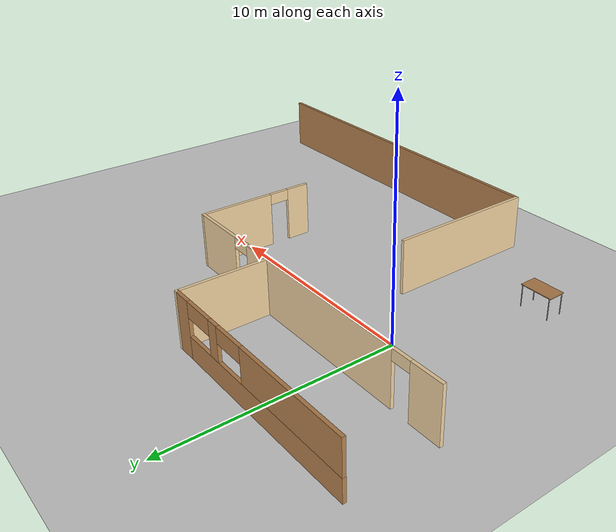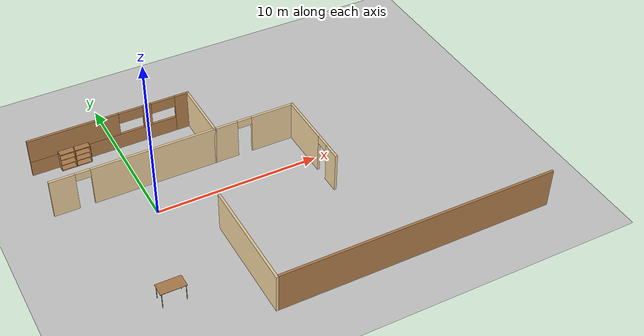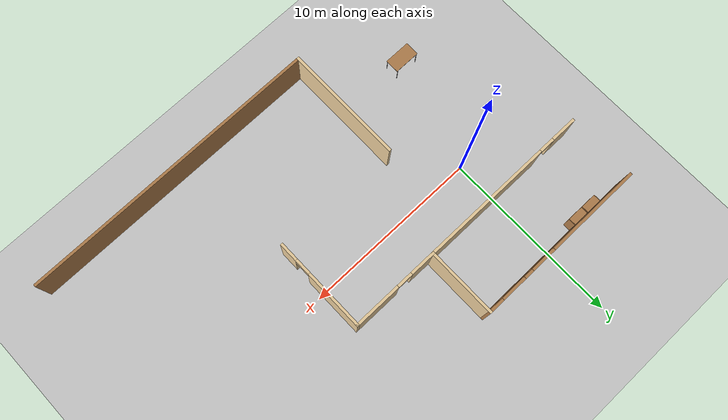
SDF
<sdf version="1.6">
 <world name="default">
  <model name="ground_plane">
   <static>1</static>
   <link name="link">
    <collision name="collision">
     <geometry><plane><normal>0 0 1</normal><size>100 100</size></plane></geometry>
     <surface><friction><ode><mu>100</mu><mu2>50</mu2></ode></friction></surface>
    </collision>
    <visual name="visual">
     <cast_shadows>0</cast_shadows>
     <geometry><plane><normal>0 0 1</normal><size>100 100</size></plane></geometry>
     <material>
      <script><uri>file://media/materials/scripts/gazebo.material</uri><name>Gazebo/Grey</name></script>
     </material>
    </visual>
   </link>
  </model>
  <model name="mymodel_2">
   <link name="Wall_119">
    <pose>21.35 1.375 0 0 0 -1.5708</pose>
    <visual name="Wall_119_Visual_0">
     <pose>-0.987502 0 1.25 0 -0 0</pose>
     <geometry><box><size>3.425 0.15 2.5</size></box></geometry>
     <material>
      <script><uri>file://media/materials/scripts/gazebo.material</uri><name>Gazebo/Grey</name></script>
      <ambient>0.921569 0.807843 0.615686 1</ambient>
      <shader type="pixel"/>
      <diffuse>0.7 0.7 0.7 1</diffuse>
      <specular>0.01 0.01 0.01 1</specular>
      <emissive>0 0 0 1</emissive>
     </material>
    </visual>
    <visual name="Wall_119_Visual_1">
     <pose>2.1625 0 1.25 0 -0 0</pose>
     <geometry><box><size>1.075 0.15 2.5</size></box></geometry>
     <material>
      <script><uri>file://media/materials/scripts/gazebo.material</uri><name>Gazebo/Grey</name></script>
      <ambient>0.921569 0.807843 0.615686 1</ambient>
      <shader type="pixel"/>
      <diffuse>0.7 0.7 0.7 1</diffuse>
      <specular>0.01 0.01 0.01 1</specular>
      <emissive>0 0 0 1</emissive>
     </material>
    </visual>
    <visual name="Wall_119_Visual_2">
     <pose>1.175 0 2.25 0 -0 0</pose>
     <geometry><box><size>0.9 0.15 0.5</size></box></geometry>
     <material>
      <script><uri>file://media/materials/scripts/gazebo.material</uri><name>Gazebo/Grey</name></script>
      <ambient>0.921569 0.807843 0.615686 1</ambient>
      <shader type="pixel"/>
      <diffuse>0.7 0.7 0.7 1</diffuse>
      <specular>0.01 0.01 0.01 1</specular>
      <emissive>0 0 0 1</emissive>
     </material>
    </visual>
    <collision name="Wall_119_Collision_0">
     <pose>-0.987502 0 1.25 0 -0 0</pose>
     <geometry><box><size>3.425 0.15 2.5</size></box></geometry>
     <surface>
      <friction>
       <ode><mu>1</mu><mu2>1</mu2><fdir1>0 0 0</fdir1><slip1>0</slip1><slip2>0</slip2></ode>
       <torsional>
        <coefficient>1</coefficient>
        <patch_radius>0</patch_radius>
        <surface_radius>0</surface_radius>
        <use_patch_radius>1</use_patch_radius>
        <ode><slip>0</slip></ode>
       </torsional>
      </friction>
      <bounce><restitution_coefficient>0</restitution_coefficient><threshold>1e+06</threshold></bounce>
      <contact>
       <collide_without_contact>0</collide_without_contact>
       <collide_without_contact_bitmask>1</collide_without_contact_bitmask>
       <collide_bitmask>1</collide_bitmask>
       <ode>
        <soft_cfm>0</soft_cfm>
        <soft_erp>0.2</soft_erp>
        <kp>1e+13</kp>
        <kd>1</kd>
        <max_vel>0.01</max_vel>
        <min_depth>0</min_depth>
       </ode>
       <bullet>
        <split_impulse>1</split_impulse>
        <split_impulse_penetration_threshold>-0.01</split_impulse_penetration_threshold>
        <soft_cfm>0</soft_cfm>
        <soft_erp>0.2</soft_erp>
        <kp>1e+13</kp>
        <kd>1</kd>
       </bullet>
      </contact>
     </surface>
    </collision>
    <collision name="Wall_119_Collision_1">
     <pose>2.1625 0 1.25 0 -0 0</pose>
     <geometry><box><size>1.075 0.15 2.5</size></box></geometry>
     <surface>
      <friction>
       <ode><mu>1</mu><mu2>1</mu2><fdir1>0 0 0</fdir1><slip1>0</slip1><slip2>0</slip2></ode>
       <torsional>
        <coefficient>1</coefficient>
        <patch_radius>0</patch_radius>
        <surface_radius>0</surface_radius>
        <use_patch_radius>1</use_patch_radius>
        <ode><slip>0</slip></ode>
       </torsional>
      </friction>
      <bounce><restitution_coefficient>0</restitution_coefficient><threshold>1e+06</threshold></bounce>
      <contact>
       <collide_without_contact>0</collide_without_contact>
       <collide_without_contact_bitmask>1</collide_without_contact_bitmask>
       <collide_bitmask>1</collide_bitmask>
       <ode>
        <soft_cfm>0</soft_cfm>
        <soft_erp>0.2</soft_erp>
        <kp>1e+13</kp>
        <kd>1</kd>
        <max_vel>0.01</max_vel>
        <min_depth>0</min_depth>
       </ode>
       <bullet>
        <split_impulse>1</split_impulse>
        <split_impulse_penetration_threshold>-0.01</split_impulse_penetration_threshold>
        <soft_cfm>0</soft_cfm>
        <soft_erp>0.2</soft_erp>
        <kp>1e+13</kp>
        <kd>1</kd>
       </bullet>
      </contact>
     </surface>
    </collision>
    <collision name="Wall_119_Collision_2">
     <pose>1.175 0 2.25 0 -0 0</pose>
     <geometry><box><size>0.9 0.15 0.5</size></box></geometry>
     <surface>
      <friction>
       <ode><mu>1</mu><mu2>1</mu2><fdir1>0 0 0</fdir1><slip1>0</slip1><slip2>0</slip2></ode>
       <torsional>
        <coefficient>1</coefficient>
        <patch_radius>0</patch_radius>
        <surface_radius>0</surface_radius>
        <use_patch_radius>1</use_patch_radius>
        <ode><slip>0</slip></ode>
       </torsional>
      </friction>
      <bounce><restitution_coefficient>0</restitution_coefficient><threshold>1e+06</threshold></bounce>
      <contact>
       <collide_without_contact>0</collide_without_contact>
       <collide_without_contact_bitmask>1</collide_without_contact_bitmask>
       <collide_bitmask>1</collide_bitmask>
       <ode>
        <soft_cfm>0</soft_cfm>
        <soft_erp>0.2</soft_erp>
        <kp>1e+13</kp>
        <kd>1</kd>
        <max_vel>0.01</max_vel>
        <min_depth>0</min_depth>
       </ode>
       <bullet>
        <split_impulse>1</split_impulse>
        <split_impulse_penetration_threshold>-0.01</split_impulse_penetration_threshold>
        <soft_cfm>0</soft_cfm>
        <soft_erp>0.2</soft_erp>
        <kp>1e+13</kp>
        <kd>1</kd>
       </bullet>
      </contact>
     </surface>
    </collision>
   </link>
   <link name="Wall_170">
    <pose>14.253 -4.518 0 0 0 -1.5708</pose>
    <visual name="Wall_170_Visual">
     <pose>0 0 1.25 0 -0 0</pose>
     <geometry><box><size>6.814 0.15 2.5</size></box></geometry>
     <material>
      <script><uri>file://media/materials/scripts/gazebo.material</uri><name>Gazebo/Grey</name></script>
      <ambient>0.921569 0.807843 0.615686 1</ambient>
      <shader type="pixel"/>
      <diffuse>0.7 0.7 0.7 1</diffuse>
      <specular>0.01 0.01 0.01 1</specular>
      <emissive>0 0 0 1</emissive>
     </material>
    </visual>
    <collision name="Wall_170_Collision">
     <pose>0 0 1.25 0 -0 0</pose>
     <geometry><box><size>6.814 0.15 2.5</size></box></geometry>
     <surface>
      <friction>
       <ode><mu>1</mu><mu2>1</mu2><fdir1>0 0 0</fdir1><slip1>0</slip1><slip2>0</slip2></ode>
       <torsional>
        <coefficient>1</coefficient>
        <patch_radius>0</patch_radius>
        <surface_radius>0</surface_radius>
        <use_patch_radius>1</use_patch_radius>
        <ode><slip>0</slip></ode>
       </torsional>
      </friction>
      <bounce><restitution_coefficient>0</restitution_coefficient><threshold>1e+06</threshold></bounce>
      <contact>
       <collide_without_contact>0</collide_without_contact>
       <collide_without_contact_bitmask>1</collide_without_contact_bitmask>
       <collide_bitmask>1</collide_bitmask>
       <ode>
        <soft_cfm>0</soft_cfm>
        <soft_erp>0.2</soft_erp>
        <kp>1e+13</kp>
        <kd>1</kd>
        <max_vel>0.01</max_vel>
        <min_depth>0</min_depth>
       </ode>
       <bullet>
        <split_impulse>1</split_impulse>
        <split_impulse_penetration_threshold>-0.01</split_impulse_penetration_threshold>
        <soft_cfm>0</soft_cfm>
        <soft_erp>0.2</soft_erp>
        <kp>1e+13</kp>
        <kd>1</kd>
       </bullet>
      </contact>
     </surface>
    </collision>
   </link>
   <link name="Wall_173">
    <pose>22.775 -7.85 0 0 -0 3.14159</pose>
    <visual name="Wall_173_Visual">
     <pose>0 0 1.25 0 -0 0</pose>
     <geometry><box><size>17 0.15 2.5</size></box></geometry>
     <material>
      <script><uri>file://media/materials/scripts/gazebo.material</uri><name>Gazebo/Wood</name></script>
      <ambient>0.996078 0.47451 0.0196078 1</ambient>
      <shader type="pixel"/>
      <diffuse>1 1 1 1</diffuse>
      <specular>0.2 0.2 0.2 1</specular>
      <emissive>0 0 0 1</emissive>
     </material>
    </visual>
    <collision name="Wall_173_Collision">
     <pose>0 0 1.25 0 -0 0</pose>
     <geometry><box><size>17 0.15 2.5</size></box></geometry>
     <surface>
      <friction>
       <ode><mu>1</mu><mu2>1</mu2><fdir1>0 0 0</fdir1><slip1>0</slip1><slip2>0</slip2></ode>
       <torsional>
        <coefficient>1</coefficient>
        <patch_radius>0</patch_radius>
        <surface_radius>0</surface_radius>
        <use_patch_radius>1</use_patch_radius>
        <ode><slip>0</slip></ode>
       </torsional>
      </friction>
      <bounce><restitution_coefficient>0</restitution_coefficient><threshold>1e+06</threshold></bounce>
      <contact>
       <collide_without_contact>0</collide_without_contact>
       <collide_without_contact_bitmask>1</collide_without_contact_bitmask>
       <collide_bitmask>1</collide_bitmask>
       <ode>
        <soft_cfm>0</soft_cfm>
        <soft_erp>0.2</soft_erp>
        <kp>1e+13</kp>
        <kd>1</kd>
        <max_vel>0.01</max_vel>
        <min_depth>0</min_depth>
       </ode>
       <bullet>
        <split_impulse>1</split_impulse>
        <split_impulse_penetration_threshold>-0.01</split_impulse_penetration_threshold>
        <soft_cfm>0</soft_cfm>
        <soft_erp>0.2</soft_erp>
        <kp>1e+13</kp>
        <kd>1</kd>
       </bullet>
      </contact>
     </surface>
    </collision>
   </link>
   <link name="Wall_44">
    <pose>11.425 7.85 0 0 -0 3.14159</pose>
    <visual name="Wall_44_Visual_0">
     <pose>-4.52844 0 1.25 0 -0 0</pose>
     <geometry><box><size>0.943112 0.15 2.5</size></box></geometry>
     <material>
      <script><uri>file://media/materials/scripts/gazebo.material</uri><name>Gazebo/Wood</name></script>
      <ambient>0.996078 0.47451 0.0196078 1</ambient>
      <shader type="pixel"/>
      <diffuse>1 1 1 1</diffuse>
      <specular>0.2 0.2 0.2 1</specular>
      <emissive>0 0 0 1</emissive>
     </material>
    </visual>
    <visual name="Wall_44_Visual_1">
     <pose>0.471556 0 0.5 0 -0 0</pose>
     <geometry><box><size>9.05689 0.15 1</size></box></geometry>
     <material>
      <script><uri>file://media/materials/scripts/gazebo.material</uri><name>Gazebo/Wood</name></script>
      <ambient>0.996078 0.47451 0.0196078 1</ambient>
      <shader type="pixel"/>
      <diffuse>1 1 1 1</diffuse>
      <specular>0.2 0.2 0.2 1</specular>
      <emissive>0 0 0 1</emissive>
     </material>
    </visual>
    <visual name="Wall_44_Visual_2">
     <pose>-2.28802 0 1.75 0 -0 0</pose>
     <geometry><box><size>0.537745 0.15 1.5</size></box></geometry>
     <material>
      <script><uri>file://media/materials/scripts/gazebo.material</uri><name>Gazebo/Wood</name></script>
      <ambient>0.996078 0.47451 0.0196078 1</ambient>
      <shader type="pixel"/>
      <diffuse>1 1 1 1</diffuse>
      <specular>0.2 0.2 0.2 1</specular>
      <emissive>0 0 0 1</emissive>
     </material>
    </visual>
    <visual name="Wall_44_Visual_3">
     <pose>2.24043 0 1.75 0 -0 0</pose>
     <geometry><box><size>5.51914 0.15 1.5</size></box></geometry>
     <material>
      <script><uri>file://media/materials/scripts/gazebo.material</uri><name>Gazebo/Wood</name></script>
      <ambient>0.996078 0.47451 0.0196078 1</ambient>
      <shader type="pixel"/>
      <diffuse>1 1 1 1</diffuse>
      <specular>0.2 0.2 0.2 1</specular>
      <emissive>0 0 0 1</emissive>
     </material>
    </visual>
    <visual name="Wall_44_Visual_4">
     <pose>-3.30689 0 2.15 0 -0 0</pose>
     <geometry><box><size>1.5 0.15 0.7</size></box></geometry>
     <material>
      <script><uri>file://media/materials/scripts/gazebo.material</uri><name>Gazebo/Wood</name></script>
      <ambient>0.996078 0.47451 0.0196078 1</ambient>
      <shader type="pixel"/>
      <diffuse>1 1 1 1</diffuse>
      <specular>0.2 0.2 0.2 1</specular>
      <emissive>0 0 0 1</emissive>
     </material>
    </visual>
    <visual name="Wall_44_Visual_5">
     <pose>-1.26914 0 2.15 0 -0 0</pose>
     <geometry><box><size>1.5 0.15 0.7</size></box></geometry>
     <material>
      <script><uri>file://media/materials/scripts/gazebo.material</uri><name>Gazebo/Wood</name></script>
      <ambient>0.996078 0.47451 0.0196078 1</ambient>
      <shader type="pixel"/>
      <diffuse>1 1 1 1</diffuse>
      <specular>0.2 0.2 0.2 1</specular>
      <emissive>0 0 0 1</emissive>
     </material>
    </visual>
    <collision name="Wall_44_Collision_0">
     <pose>-4.52844 0 1.25 0 -0 0</pose>
     <geometry><box><size>0.943112 0.15 2.5</size></box></geometry>
     <surface>
      <friction>
       <ode><mu>1</mu><mu2>1</mu2><fdir1>0 0 0</fdir1><slip1>0</slip1><slip2>0</slip2></ode>
       <torsional>
        <coefficient>1</coefficient>
        <patch_radius>0</patch_radius>
        <surface_radius>0</surface_radius>
        <use_patch_radius>1</use_patch_radius>
        <ode><slip>0</slip></ode>
       </torsional>
      </friction>
      <bounce><restitution_coefficient>0</restitution_coefficient><threshold>1e+06</threshold></bounce>
      <contact>
       <collide_without_contact>0</collide_without_contact>
       <collide_without_contact_bitmask>1</collide_without_contact_bitmask>
       <collide_bitmask>1</collide_bitmask>
       <ode>
        <soft_cfm>0</soft_cfm>
        <soft_erp>0.2</soft_erp>
        <kp>1e+13</kp>
        <kd>1</kd>
        <max_vel>0.01</max_vel>
        <min_depth>0</min_depth>
       </ode>
       <bullet>
        <split_impulse>1</split_impulse>
        <split_impulse_penetration_threshold>-0.01</split_impulse_penetration_threshold>
        <soft_cfm>0</soft_cfm>
        <soft_erp>0.2</soft_erp>
        <kp>1e+13</kp>
        <kd>1</kd>
       </bullet>
      </contact>
     </surface>
    </collision>
    <collision name="Wall_44_Collision_1">
     <pose>0.471556 0 0.5 0 -0 0</pose>
     <geometry><box><size>9.05689 0.15 1</size></box></geometry>
     <surface>
      <friction>
       <ode><mu>1</mu><mu2>1</mu2><fdir1>0 0 0</fdir1><slip1>0</slip1><slip2>0</slip2></ode>
       <torsional>
        <coefficient>1</coefficient>
        <patch_radius>0</patch_radius>
        <surface_radius>0</surface_radius>
        <use_patch_radius>1</use_patch_radius>
        <ode><slip>0</slip></ode>
       </torsional>
      </friction>
      <bounce><restitution_coefficient>0</restitution_coefficient><threshold>1e+06</threshold></bounce>
      <contact>
       <collide_without_contact>0</collide_without_contact>
       <collide_without_contact_bitmask>1</collide_without_contact_bitmask>
       <collide_bitmask>1</collide_bitmask>
       <ode>
        <soft_cfm>0</soft_cfm>
        <soft_erp>0.2</soft_erp>
        <kp>1e+13</kp>
        <kd>1</kd>
        <max_vel>0.01</max_vel>
        <min_depth>0</min_depth>
       </ode>
       <bullet>
        <split_impulse>1</split_impulse>
        <split_impulse_penetration_threshold>-0.01</split_impulse_penetration_threshold>
        <soft_cfm>0</soft_cfm>
        <soft_erp>0.2</soft_erp>
        <kp>1e+13</kp>
        <kd>1</kd>
       </bullet>
      </contact>
     </surface>
    </collision>
    <collision name="Wall_44_Collision_2">
     <pose>-2.28802 0 1.75 0 -0 0</pose>
     <geometry><box><size>0.537745 0.15 1.5</size></box></geometry>
     <surface>
      <friction>
       <ode><mu>1</mu><mu2>1</mu2><fdir1>0 0 0</fdir1><slip1>0</slip1><slip2>0</slip2></ode>
       <torsional>
        <coefficient>1</coefficient>
        <patch_radius>0</patch_radius>
        <surface_radius>0</surface_radius>
        <use_patch_radius>1</use_patch_radius>
        <ode><slip>0</slip></ode>
       </torsional>
      </friction>
      <bounce><restitution_coefficient>0</restitution_coefficient><threshold>1e+06</threshold></bounce>
      <contact>
       <collide_without_contact>0</collide_without_contact>
       <collide_without_contact_bitmask>1</collide_without_contact_bitmask>
       <collide_bitmask>1</collide_bitmask>
       <ode>
        <soft_cfm>0</soft_cfm>
        <soft_erp>0.2</soft_erp>
        <kp>1e+13</kp>
        <kd>1</kd>
        <max_vel>0.01</max_vel>
        <min_depth>0</min_depth>
       </ode>
       <bullet>
        <split_impulse>1</split_impulse>
        <split_impulse_penetration_threshold>-0.01</split_impulse_penetration_threshold>
        <soft_cfm>0</soft_cfm>
        <soft_erp>0.2</soft_erp>
        <kp>1e+13</kp>
        <kd>1</kd>
       </bullet>
      </contact>
     </surface>
    </collision>
    <collision name="Wall_44_Collision_3">
     <pose>2.24043 0 1.75 0 -0 0</pose>
     <geometry><box><size>5.51914 0.15 1.5</size></box></geometry>
     <surface>
      <friction>
       <ode><mu>1</mu><mu2>1</mu2><fdir1>0 0 0</fdir1><slip1>0</slip1><slip2>0</slip2></ode>
       <torsional>
        <coefficient>1</coefficient>
        <patch_radius>0</patch_radius>
        <surface_radius>0</surface_radius>
        <use_patch_radius>1</use_patch_radius>
        <ode><slip>0</slip></ode>
       </torsional>
      </friction>
      <bounce><restitution_coefficient>0</restitution_coefficient><threshold>1e+06</threshold></bounce>
      <contact>
       <collide_without_contact>0</collide_without_contact>
       <collide_without_contact_bitmask>1</collide_without_contact_bitmask>
       <collide_bitmask>1</collide_bitmask>
       <ode>
        <soft_cfm>0</soft_cfm>
        <soft_erp>0.2</soft_erp>
        <kp>1e+13</kp>
        <kd>1</kd>
        <max_vel>0.01</max_vel>
        <min_depth>0</min_depth>
       </ode>
       <bullet>
        <split_impulse>1</split_impulse>
        <split_impulse_penetration_threshold>-0.01</split_impulse_penetration_threshold>
        <soft_cfm>0</soft_cfm>
        <soft_erp>0.2</soft_erp>
        <kp>1e+13</kp>
        <kd>1</kd>
       </bullet>
      </contact>
     </surface>
    </collision>
    <collision name="Wall_44_Collision_4">
     <pose>-3.30689 0 2.15 0 -0 0</pose>
     <geometry><box><size>1.5 0.15 0.7</size></box></geometry>
     <surface>
      <friction>
       <ode><mu>1</mu><mu2>1</mu2><fdir1>0 0 0</fdir1><slip1>0</slip1><slip2>0</slip2></ode>
       <torsional>
        <coefficient>1</coefficient>
        <patch_radius>0</patch_radius>
        <surface_radius>0</surface_radius>
        <use_patch_radius>1</use_patch_radius>
        <ode><slip>0</slip></ode>
       </torsional>
      </friction>
      <bounce><restitution_coefficient>0</restitution_coefficient><threshold>1e+06</threshold></bounce>
      <contact>
       <collide_without_contact>0</collide_without_contact>
       <collide_without_contact_bitmask>1</collide_without_contact_bitmask>
       <collide_bitmask>1</collide_bitmask>
       <ode>
        <soft_cfm>0</soft_cfm>
        <soft_erp>0.2</soft_erp>
        <kp>1e+13</kp>
        <kd>1</kd>
        <max_vel>0.01</max_vel>
        <min_depth>0</min_depth>
       </ode>
       <bullet>
        <split_impulse>1</split_impulse>
        <split_impulse_penetration_threshold>-0.01</split_impulse_penetration_threshold>
        <soft_cfm>0</soft_cfm>
        <soft_erp>0.2</soft_erp>
        <kp>1e+13</kp>
        <kd>1</kd>
       </bullet>
      </contact>
     </surface>
    </collision>
    <collision name="Wall_44_Collision_5">
     <pose>-1.26914 0 2.15 0 -0 0</pose>
     <geometry><box><size>1.5 0.15 0.7</size></box></geometry>
     <surface>
      <friction>
       <ode><mu>1</mu><mu2>1</mu2><fdir1>0 0 0</fdir1><slip1>0</slip1><slip2>0</slip2></ode>
       <torsional>
        <coefficient>1</coefficient>
        <patch_radius>0</patch_radius>
        <surface_radius>0</surface_radius>
        <use_patch_radius>1</use_patch_radius>
        <ode><slip>0</slip></ode>
       </torsional>
      </friction>
      <bounce><restitution_coefficient>0</restitution_coefficient><threshold>1e+06</threshold></bounce>
      <contact>
       <collide_without_contact>0</collide_without_contact>
       <collide_without_contact_bitmask>1</collide_without_contact_bitmask>
       <collide_bitmask>1</collide_bitmask>
       <ode>
        <soft_cfm>0</soft_cfm>
        <soft_erp>0.2</soft_erp>
        <kp>1e+13</kp>
        <kd>1</kd>
        <max_vel>0.01</max_vel>
        <min_depth>0</min_depth>
       </ode>
       <bullet>
        <split_impulse>1</split_impulse>
        <split_impulse_penetration_threshold>-0.01</split_impulse_penetration_threshold>
        <soft_cfm>0</soft_cfm>
        <soft_erp>0.2</soft_erp>
        <kp>1e+13</kp>
        <kd>1</kd>
       </bullet>
      </contact>
     </surface>
    </collision>
   </link>
   <link name="Wall_80">
    <pose>11.425 4 0 0 -0 0</pose>
    <visual name="Wall_80_Visual_0">
     <pose>-4.24375 0 1.25 0 -0 0</pose>
     <geometry><box><size>1.51249 0.15 2.5</size></box></geometry>
     <material>
      <script><uri>file://media/materials/scripts/gazebo.material</uri><name>Gazebo/Grey</name></script>
      <ambient>0.921569 0.807843 0.615686 1</ambient>
      <shader type="pixel"/>
      <diffuse>0.7 0.7 0.7 1</diffuse>
      <specular>0.01 0.01 0.01 1</specular>
      <emissive>0 0 0 1</emissive>
     </material>
    </visual>
    <visual name="Wall_80_Visual_1">
     <pose>1.20625 0 1.25 0 -0 0</pose>
     <geometry><box><size>7.58751 0.15 2.5</size></box></geometry>
     <material>
      <script><uri>file://media/materials/scripts/gazebo.material</uri><name>Gazebo/Grey</name></script>
      <ambient>0.921569 0.807843 0.615686 1</ambient>
      <shader type="pixel"/>
      <diffuse>0.7 0.7 0.7 1</diffuse>
      <specular>0.01 0.01 0.01 1</specular>
      <emissive>0 0 0 1</emissive>
     </material>
    </visual>
    <visual name="Wall_80_Visual_2">
     <pose>-3.03751 0 2.25 0 -0 0</pose>
     <geometry><box><size>0.9 0.15 0.5</size></box></geometry>
     <material>
      <script><uri>file://media/materials/scripts/gazebo.material</uri><name>Gazebo/Grey</name></script>
      <ambient>0.921569 0.807843 0.615686 1</ambient>
      <shader type="pixel"/>
      <diffuse>0.7 0.7 0.7 1</diffuse>
      <specular>0.01 0.01 0.01 1</specular>
      <emissive>0 0 0 1</emissive>
     </material>
    </visual>
    <collision name="Wall_80_Collision_0">
     <pose>-4.24375 0 1.25 0 -0 0</pose>
     <geometry><box><size>1.51249 0.15 2.5</size></box></geometry>
     <surface>
      <friction>
       <ode><mu>1</mu><mu2>1</mu2><fdir1>0 0 0</fdir1><slip1>0</slip1><slip2>0</slip2></ode>
       <torsional>
        <coefficient>1</coefficient>
        <patch_radius>0</patch_radius>
        <surface_radius>0</surface_radius>
        <use_patch_radius>1</use_patch_radius>
        <ode><slip>0</slip></ode>
       </torsional>
      </friction>
      <bounce><restitution_coefficient>0</restitution_coefficient><threshold>1e+06</threshold></bounce>
      <contact>
       <collide_without_contact>0</collide_without_contact>
       <collide_without_contact_bitmask>1</collide_without_contact_bitmask>
       <collide_bitmask>1</collide_bitmask>
       <ode>
        <soft_cfm>0</soft_cfm>
        <soft_erp>0.2</soft_erp>
        <kp>1e+13</kp>
        <kd>1</kd>
        <max_vel>0.01</max_vel>
        <min_depth>0</min_depth>
       </ode>
       <bullet>
        <split_impulse>1</split_impulse>
        <split_impulse_penetration_threshold>-0.01</split_impulse_penetration_threshold>
        <soft_cfm>0</soft_cfm>
        <soft_erp>0.2</soft_erp>
        <kp>1e+13</kp>
        <kd>1</kd>
       </bullet>
      </contact>
     </surface>
    </collision>
    <collision name="Wall_80_Collision_1">
     <pose>1.20625 0 1.25 0 -0 0</pose>
     <geometry><box><size>7.58751 0.15 2.5</size></box></geometry>
     <surface>
      <friction>
       <ode><mu>1</mu><mu2>1</mu2><fdir1>0 0 0</fdir1><slip1>0</slip1><slip2>0</slip2></ode>
       <torsional>
        <coefficient>1</coefficient>
        <patch_radius>0</patch_radius>
        <surface_radius>0</surface_radius>
        <use_patch_radius>1</use_patch_radius>
        <ode><slip>0</slip></ode>
       </torsional>
      </friction>
      <bounce><restitution_coefficient>0</restitution_coefficient><threshold>1e+06</threshold></bounce>
      <contact>
       <collide_without_contact>0</collide_without_contact>
       <collide_without_contact_bitmask>1</collide_without_contact_bitmask>
       <collide_bitmask>1</collide_bitmask>
       <ode>
        <soft_cfm>0</soft_cfm>
        <soft_erp>0.2</soft_erp>
        <kp>1e+13</kp>
        <kd>1</kd>
        <max_vel>0.01</max_vel>
        <min_depth>0</min_depth>
       </ode>
       <bullet>
        <split_impulse>1</split_impulse>
        <split_impulse_penetration_threshold>-0.01</split_impulse_penetration_threshold>
        <soft_cfm>0</soft_cfm>
        <soft_erp>0.2</soft_erp>
        <kp>1e+13</kp>
        <kd>1</kd>
       </bullet>
      </contact>
     </surface>
    </collision>
    <collision name="Wall_80_Collision_2">
     <pose>-3.03751 0 2.25 0 -0 0</pose>
     <geometry><box><size>0.9 0.15 0.5</size></box></geometry>
     <surface>
      <friction>
       <ode><mu>1</mu><mu2>1</mu2><fdir1>0 0 0</fdir1><slip1>0</slip1><slip2>0</slip2></ode>
       <torsional>
        <coefficient>1</coefficient>
        <patch_radius>0</patch_radius>
        <surface_radius>0</surface_radius>
        <use_patch_radius>1</use_patch_radius>
        <ode><slip>0</slip></ode>
       </torsional>
      </friction>
      <bounce><restitution_coefficient>0</restitution_coefficient><threshold>1e+06</threshold></bounce>
      <contact>
       <collide_without_contact>0</collide_without_contact>
       <collide_without_contact_bitmask>1</collide_without_contact_bitmask>
       <collide_bitmask>1</collide_bitmask>
       <ode>
        <soft_cfm>0</soft_cfm>
        <soft_erp>0.2</soft_erp>
        <kp>1e+13</kp>
        <kd>1</kd>
        <max_vel>0.01</max_vel>
        <min_depth>0</min_depth>
       </ode>
       <bullet>
        <split_impulse>1</split_impulse>
        <split_impulse_penetration_threshold>-0.01</split_impulse_penetration_threshold>
        <soft_cfm>0</soft_cfm>
        <soft_erp>0.2</soft_erp>
        <kp>1e+13</kp>
        <kd>1</kd>
       </bullet>
      </contact>
     </surface>
    </collision>
   </link>
   <link name="Wall_81">
    <pose>16.35 5.925 0 0 -0 1.5708</pose>
    <visual name="Wall_81_Visual">
     <pose>0 0 1.25 0 -0 0</pose>
     <geometry><box><size>4 0.15 2.5</size></box></geometry>
     <material>
      <script><uri>file://media/materials/scripts/gazebo.material</uri><name>Gazebo/Grey</name></script>
      <ambient>0.921569 0.807843 0.615686 1</ambient>
      <shader type="pixel"/>
      <diffuse>0.7 0.7 0.7 1</diffuse>
      <specular>0.01 0.01 0.01 1</specular>
      <emissive>0 0 0 1</emissive>
     </material>
    </visual>
    <collision name="Wall_81_Collision">
     <pose>0 0 1.25 0 -0 0</pose>
     <geometry><box><size>4 0.15 2.5</size></box></geometry>
     <surface>
      <friction>
       <ode><mu>1</mu><mu2>1</mu2><fdir1>0 0 0</fdir1><slip1>0</slip1><slip2>0</slip2></ode>
       <torsional>
        <coefficient>1</coefficient>
        <patch_radius>0</patch_radius>
        <surface_radius>0</surface_radius>
        <use_patch_radius>1</use_patch_radius>
        <ode><slip>0</slip></ode>
       </torsional>
      </friction>
      <bounce><restitution_coefficient>0</restitution_coefficient><threshold>1e+06</threshold></bounce>
      <contact>
       <collide_without_contact>0</collide_without_contact>
       <collide_without_contact_bitmask>1</collide_without_contact_bitmask>
       <collide_bitmask>1</collide_bitmask>
       <ode>
        <soft_cfm>0</soft_cfm>
        <soft_erp>0.2</soft_erp>
        <kp>1e+13</kp>
        <kd>1</kd>
        <max_vel>0.01</max_vel>
        <min_depth>0</min_depth>
       </ode>
       <bullet>
        <split_impulse>1</split_impulse>
        <split_impulse_penetration_threshold>-0.01</split_impulse_penetration_threshold>
        <soft_cfm>0</soft_cfm>
        <soft_erp>0.2</soft_erp>
        <kp>1e+13</kp>
        <kd>1</kd>
       </bullet>
      </contact>
     </surface>
    </collision>
   </link>
   <link name="Wall_83">
    <pose>18.85 4 0 0 -0 0</pose>
    <visual name="Wall_83_Visual_0">
     <pose>-1.81995 0 1.25 0 -0 0</pose>
     <geometry><box><size>1.5101 0.15 2.5</size></box></geometry>
     <material>
      <script><uri>file://media/materials/scripts/gazebo.material</uri><name>Gazebo/Grey</name></script>
      <ambient>0.921569 0.807843 0.615686 1</ambient>
      <shader type="pixel"/>
      <diffuse>0.7 0.7 0.7 1</diffuse>
      <specular>0.01 0.01 0.01 1</specular>
      <emissive>0 0 0 1</emissive>
     </material>
    </visual>
    <visual name="Wall_83_Visual_1">
     <pose>1.20505 0 1.25 0 -0 0</pose>
     <geometry><box><size>2.7399 0.15 2.5</size></box></geometry>
     <material>
      <script><uri>file://media/materials/scripts/gazebo.material</uri><name>Gazebo/Grey</name></script>
      <ambient>0.921569 0.807843 0.615686 1</ambient>
      <shader type="pixel"/>
      <diffuse>0.7 0.7 0.7 1</diffuse>
      <specular>0.01 0.01 0.01 1</specular>
      <emissive>0 0 0 1</emissive>
     </material>
    </visual>
    <visual name="Wall_83_Visual_2">
     <pose>-0.614896 0 2.25 0 -0 0</pose>
     <geometry><box><size>0.9 0.15 0.5</size></box></geometry>
     <material>
      <script><uri>file://media/materials/scripts/gazebo.material</uri><name>Gazebo/Grey</name></script>
      <ambient>0.921569 0.807843 0.615686 1</ambient>
      <shader type="pixel"/>
      <diffuse>0.7 0.7 0.7 1</diffuse>
      <specular>0.01 0.01 0.01 1</specular>
      <emissive>0 0 0 1</emissive>
     </material>
    </visual>
    <collision name="Wall_83_Collision_0">
     <pose>-1.81995 0 1.25 0 -0 0</pose>
     <geometry><box><size>1.5101 0.15 2.5</size></box></geometry>
     <surface>
      <friction>
       <ode><mu>1</mu><mu2>1</mu2><fdir1>0 0 0</fdir1><slip1>0</slip1><slip2>0</slip2></ode>
       <torsional>
        <coefficient>1</coefficient>
        <patch_radius>0</patch_radius>
        <surface_radius>0</surface_radius>
        <use_patch_radius>1</use_patch_radius>
        <ode><slip>0</slip></ode>
       </torsional>
      </friction>
      <bounce><restitution_coefficient>0</restitution_coefficient><threshold>1e+06</threshold></bounce>
      <contact>
       <collide_without_contact>0</collide_without_contact>
       <collide_without_contact_bitmask>1</collide_without_contact_bitmask>
       <collide_bitmask>1</collide_bitmask>
       <ode>
        <soft_cfm>0</soft_cfm>
        <soft_erp>0.2</soft_erp>
        <kp>1e+13</kp>
        <kd>1</kd>
        <max_vel>0.01</max_vel>
        <min_depth>0</min_depth>
       </ode>
       <bullet>
        <split_impulse>1</split_impulse>
        <split_impulse_penetration_threshold>-0.01</split_impulse_penetration_threshold>
        <soft_cfm>0</soft_cfm>
        <soft_erp>0.2</soft_erp>
        <kp>1e+13</kp>
        <kd>1</kd>
       </bullet>
      </contact>
     </surface>
    </collision>
    <collision name="Wall_83_Collision_1">
     <pose>1.20505 0 1.25 0 -0 0</pose>
     <geometry><box><size>2.7399 0.15 2.5</size></box></geometry>
     <surface>
      <friction>
       <ode><mu>1</mu><mu2>1</mu2><fdir1>0 0 0</fdir1><slip1>0</slip1><slip2>0</slip2></ode>
       <torsional>
        <coefficient>1</coefficient>
        <patch_radius>0</patch_radius>
        <surface_radius>0</surface_radius>
        <use_patch_radius>1</use_patch_radius>
        <ode><slip>0</slip></ode>
       </torsional>
      </friction>
      <bounce><restitution_coefficient>0</restitution_coefficient><threshold>1e+06</threshold></bounce>
      <contact>
       <collide_without_contact>0</collide_without_contact>
       <collide_without_contact_bitmask>1</collide_without_contact_bitmask>
       <collide_bitmask>1</collide_bitmask>
       <ode>
        <soft_cfm>0</soft_cfm>
        <soft_erp>0.2</soft_erp>
        <kp>1e+13</kp>
        <kd>1</kd>
        <max_vel>0.01</max_vel>
        <min_depth>0</min_depth>
       </ode>
       <bullet>
        <split_impulse>1</split_impulse>
        <split_impulse_penetration_threshold>-0.01</split_impulse_penetration_threshold>
        <soft_cfm>0</soft_cfm>
        <soft_erp>0.2</soft_erp>
        <kp>1e+13</kp>
        <kd>1</kd>
       </bullet>
      </contact>
     </surface>
    </collision>
    <collision name="Wall_83_Collision_2">
     <pose>-0.614896 0 2.25 0 -0 0</pose>
     <geometry><box><size>0.9 0.15 0.5</size></box></geometry>
     <surface>
      <friction>
       <ode><mu>1</mu><mu2>1</mu2><fdir1>0 0 0</fdir1><slip1>0</slip1><slip2>0</slip2></ode>
       <torsional>
        <coefficient>1</coefficient>
        <patch_radius>0</patch_radius>
        <surface_radius>0</surface_radius>
        <use_patch_radius>1</use_patch_radius>
        <ode><slip>0</slip></ode>
       </torsional>
      </friction>
      <bounce><restitution_coefficient>0</restitution_coefficient><threshold>1e+06</threshold></bounce>
      <contact>
       <collide_without_contact>0</collide_without_contact>
       <collide_without_contact_bitmask>1</collide_without_contact_bitmask>
       <collide_bitmask>1</collide_bitmask>
       <ode>
        <soft_cfm>0</soft_cfm>
        <soft_erp>0.2</soft_erp>
        <kp>1e+13</kp>
        <kd>1</kd>
        <max_vel>0.01</max_vel>
        <min_depth>0</min_depth>
       </ode>
       <bullet>
        <split_impulse>1</split_impulse>
        <split_impulse_penetration_threshold>-0.01</split_impulse_penetration_threshold>
        <soft_cfm>0</soft_cfm>
        <soft_erp>0.2</soft_erp>
        <kp>1e+13</kp>
        <kd>1</kd>
       </bullet>
      </contact>
     </surface>
    </collision>
   </link>
   <static>1</static>
   <pose>-11.6418 -1.59752 0 0 -0 0</pose>
  </model>
  <model name="table_0">
   <static>1</static>
   <link name="link">
    <collision name="surface">
     <pose>0 0 1 0 -0 0</pose>
     <geometry><box><size>1.5 0.8 0.03</size></box></geometry>
     <surface><friction><ode><mu>0.6</mu><mu2>0.6</mu2></ode></friction></surface>
    </collision>
    <visual name="visual1">
     <pose>0 0 1 0 -0 0</pose>
     <geometry><box><size>1.5 0.8 0.03</size></box></geometry>
     <material>
      <script><uri>file://media/materials/scripts/gazebo.material</uri><name>Gazebo/Wood</name></script>
     </material>
    </visual>
    <collision name="front_left_leg">
     <pose>0.68 0.38 0.5 0 -0 0</pose>
     <geometry><cylinder><radius>0.02</radius><length>1</length></cylinder></geometry>
    </collision>
    <visual name="front_left_leg">
     <pose>0.68 0.38 0.5 0 -0 0</pose>
     <geometry><cylinder><radius>0.02</radius><length>1</length></cylinder></geometry>
     <material>
      <script><uri>file://media/materials/scripts/gazebo.material</uri><name>Gazebo/Grey</name></script>
     </material>
    </visual>
    <collision name="front_right_leg">
     <pose>0.68 -0.38 0.5 0 -0 0</pose>
     <geometry><cylinder><radius>0.02</radius><length>1</length></cylinder></geometry>
    </collision>
    <visual name="front_right_leg">
     <pose>0.68 -0.38 0.5 0 -0 0</pose>
     <geometry><cylinder><radius>0.02</radius><length>1</length></cylinder></geometry>
     <material>
      <script><uri>file://media/materials/scripts/gazebo.material</uri><name>Gazebo/Grey</name></script>
     </material>
    </visual>
    <collision name="back_right_leg">
     <pose>-0.68 -0.38 0.5 0 -0 0</pose>
     <geometry><cylinder><radius>0.02</radius><length>1</length></cylinder></geometry>
    </collision>
    <visual name="back_right_leg">
     <pose>-0.68 -0.38 0.5 0 -0 0</pose>
     <geometry><cylinder><radius>0.02</radius><length>1</length></cylinder></geometry>
     <material>
      <script><uri>file://media/materials/scripts/gazebo.material</uri><name>Gazebo/Grey</name></script>
     </material>
    </visual>
    <collision name="back_left_leg">
     <pose>-0.68 0.38 0.5 0 -0 0</pose>
     <geometry><cylinder><radius>0.02</radius><length>1</length></cylinder></geometry>
    </collision>
    <visual name="back_left_leg">
     <pose>-0.68 0.38 0.5 0 -0 0</pose>
     <geometry><cylinder><radius>0.02</radius><length>1</length></cylinder></geometry>
     <material>
      <script><uri>file://media/materials/scripts/gazebo.material</uri><name>Gazebo/Grey</name></script>
     </material>
    </visual>
   </link>
   <pose>-1.80495 -6.26128 0 0 -0 0</pose>
  </model>
  <model name="bookshelf">
   <static>1</static>
   <link name="link">
    <inertial><mass>1</mass></inertial>
    <collision name="back">
     <pose>0 0.005 0.6 0 -0 0</pose>
     <geometry><box><size>0.9 0.01 1.2</size></box></geometry>
    </collision>
    <visual name="visual1">
     <pose>0 0.005 0.6 0 -0 0</pose>
     <geometry><box><size>0.9 0.01 1.2</size></box></geometry>
     <material>
      <script><uri>file://media/materials/scripts/gazebo.material</uri><name>Gazebo/Wood</name></script>
     </material>
    </visual>
    <collision name="left_side">
     <pose>0.45 -0.195 0.6 0 -0 0</pose>
     <geometry><box><size>0.02 0.4 1.2</size></box></geometry>
    </collision>
    <visual name="visual2">
     <pose>0.45 -0.195 0.6 0 -0 0</pose>
     <geometry><box><size>0.02 0.4 1.2</size></box></geometry>
     <material>
      <script><uri>file://media/materials/scripts/gazebo.material</uri><name>Gazebo/Wood</name></script>
     </material>
    </visual>
    <collision name="right_side">
     <pose>-0.45 -0.195 0.6 0 -0 0</pose>
     <geometry><box><size>0.02 0.4 1.2</size></box></geometry>
    </collision>
    <visual name="visual3">
     <pose>-0.45 -0.195 0.6 0 -0 0</pose>
     <geometry><box><size>0.02 0.4 1.2</size></box></geometry>
     <material>
      <script><uri>file://media/materials/scripts/gazebo.material</uri><name>Gazebo/Wood</name></script>
     </material>
    </visual>
    <collision name="bottom">
     <pose>0 -0.195 0.03 0 -0 0</pose>
     <geometry><box><size>0.88 0.4 0.06</size></box></geometry>
    </collision>
    <visual name="visual4">
     <pose>0 -0.195 0.03 0 -0 0</pose>
     <geometry><box><size>0.88 0.4 0.06</size></box></geometry>
     <material>
      <script><uri>file://media/materials/scripts/gazebo.material</uri><name>Gazebo/Wood</name></script>
     </material>
    </visual>
    <collision name="top">
     <pose>0 -0.195 1.19 0 -0 0</pose>
     <geometry><box><size>0.88 0.4 0.02</size></box></geometry>
    </collision>
    <visual name="visual5">
     <pose>0 -0.195 1.19 0 -0 0</pose>
     <geometry><box><size>0.88 0.4 0.02</size></box></geometry>
     <material>
      <script><uri>file://media/materials/scripts/gazebo.material</uri><name>Gazebo/Wood</name></script>
     </material>
    </visual>
    <collision name="low_shelf">
     <pose>0 -0.195 0.43 0 -0 0</pose>
     <geometry><box><size>0.88 0.4 0.02</size></box></geometry>
    </collision>
    <visual name="visual6">
     <pose>0 -0.195 0.43 0 -0 0</pose>
     <geometry><box><size>0.88 0.4 0.02</size></box></geometry>
     <material>
      <script><uri>file://media/materials/scripts/gazebo.material</uri><name>Gazebo/Wood</name></script>
     </material>
    </visual>
    <collision name="high_shelf">
     <pose>0 -0.195 0.8 0 -0 0</pose>
     <geometry><box><size>0.88 0.4 0.02</size></box></geometry>
    </collision>
    <visual name="visual7">
     <pose>0 -0.195 0.8 0 -0 0</pose>
     <geometry><box><size>0.88 0.4 0.02</size></box></geometry>
     <material>
      <script><uri>file://media/materials/scripts/gazebo.material</uri><name>Gazebo/Wood</name></script>
     </material>
    </visual>
   </link>
   <pose>-2.19102 6.15318 0 0 -0 0</pose>
  </model>
  <model name="bookshelf_0">
   <static>1</static>
   <link name="link">
    <inertial><mass>1</mass></inertial>
    <collision name="back">
     <pose>0 0.005 0.6 0 -0 0</pose>
     <geometry><box><size>0.9 0.01 1.2</size></box></geometry>
    </collision>
    <visual name="visual1">
     <pose>0 0.005 0.6 0 -0 0</pose>
     <geometry><box><size>0.9 0.01 1.2</size></box></geometry>
     <material>
      <script><uri>file://media/materials/scripts/gazebo.material</uri><name>Gazebo/Wood</name></script>
     </material>
    </visual>
    <collision name="left_side">
     <pose>0.45 -0.195 0.6 0 -0 0</pose>
     <geometry><box><size>0.02 0.4 1.2</size></box></geometry>
    </collision>
    <visual name="visual2">
     <pose>0.45 -0.195 0.6 0 -0 0</pose>
     <geometry><box><size>0.02 0.4 1.2</size></box></geometry>
     <material>
      <script><uri>file://media/materials/scripts/gazebo.material</uri><name>Gazebo/Wood</name></script>
     </material>
    </visual>
    <collision name="right_side">
     <pose>-0.45 -0.195 0.6 0 -0 0</pose>
     <geometry><box><size>0.02 0.4 1.2</size></box></geometry>
    </collision>
    <visual name="visual3">
     <pose>-0.45 -0.195 0.6 0 -0 0</pose>
     <geometry><box><size>0.02 0.4 1.2</size></box></geometry>
     <material>
      <script><uri>file://media/materials/scripts/gazebo.material</uri><name>Gazebo/Wood</name></script>
     </material>
    </visual>
    <collision name="bottom">
     <pose>0 -0.195 0.03 0 -0 0</pose>
     <geometry><box><size>0.88 0.4 0.06</size></box></geometry>
    </collision>
    <visual name="visual4">
     <pose>0 -0.195 0.03 0 -0 0</pose>
     <geometry><box><size>0.88 0.4 0.06</size></box></geometry>
     <material>
      <script><uri>file://media/materials/scripts/gazebo.material</uri><name>Gazebo/Wood</name></script>
     </material>
    </visual>
    <collision name="top">
     <pose>0 -0.195 1.19 0 -0 0</pose>
     <geometry><box><size>0.88 0.4 0.02</size></box></geometry>
    </collision>
    <visual name="visual5">
     <pose>0 -0.195 1.19 0 -0 0</pose>
     <geometry><box><size>0.88 0.4 0.02</size></box></geometry>
     <material>
      <script><uri>file://media/materials/scripts/gazebo.material</uri><name>Gazebo/Wood</name></script>
     </material>
    </visual>
    <collision name="low_shelf">
     <pose>0 -0.195 0.43 0 -0 0</pose>
     <geometry><box><size>0.88 0.4 0.02</size></box></geometry>
    </collision>
    <visual name="visual6">
     <pose>0 -0.195 0.43 0 -0 0</pose>
     <geometry><box><size>0.88 0.4 0.02</size></box></geometry>
     <material>
      <script><uri>file://media/materials/scripts/gazebo.material</uri><name>Gazebo/Wood</name></script>
     </material>
    </visual>
    <collision name="high_shelf">
     <pose>0 -0.195 0.8 0 -0 0</pose>
     <geometry><box><size>0.88 0.4 0.02</size></box></geometry>
    </collision>
    <visual name="visual7">
     <pose>0 -0.195 0.8 0 -0 0</pose>
     <geometry><box><size>0.88 0.4 0.02</size></box></geometry>
     <material>
      <script><uri>file://media/materials/scripts/gazebo.material</uri><name>Gazebo/Wood</name></script>
     </material>
    </visual>
   </link>
   <pose>-3.12194 6.15751 0 0 -0 0</pose>
  </model>
 </world>
</sdf>
